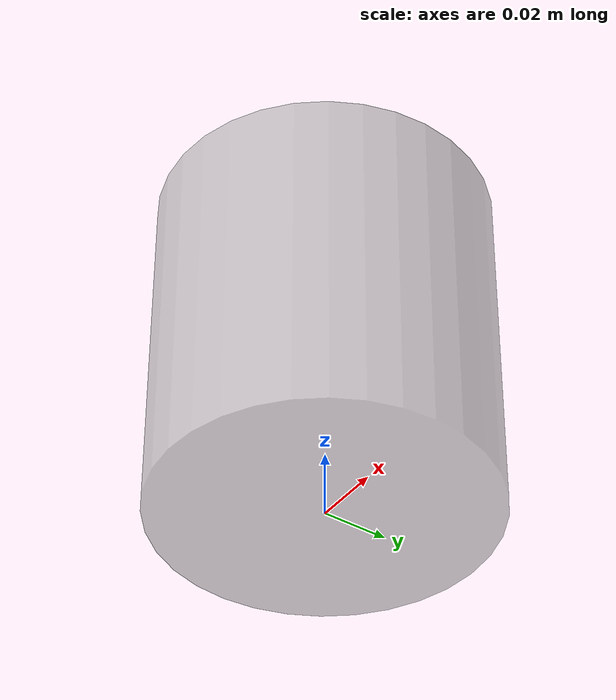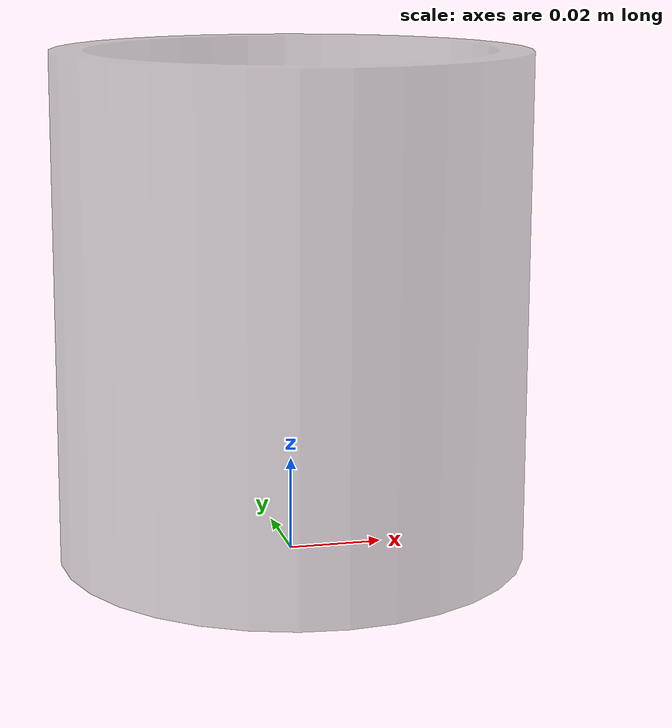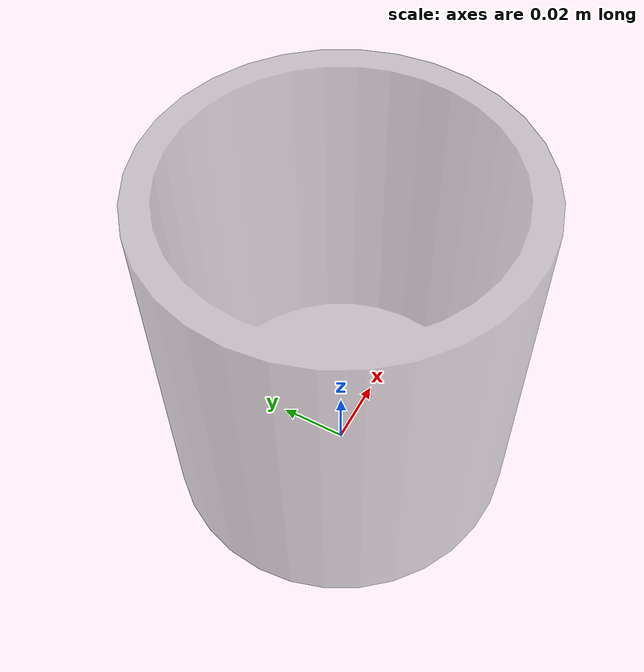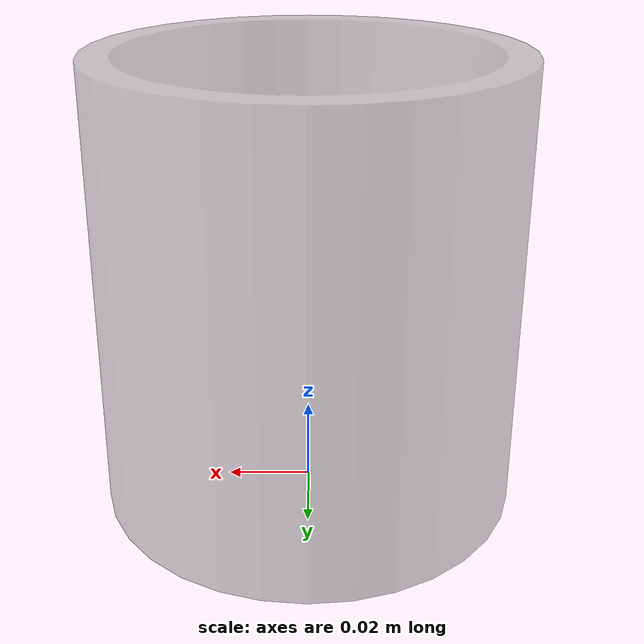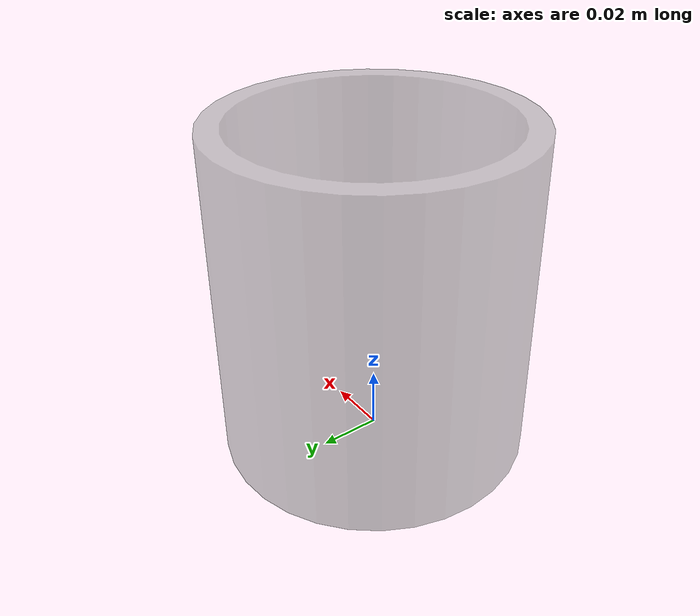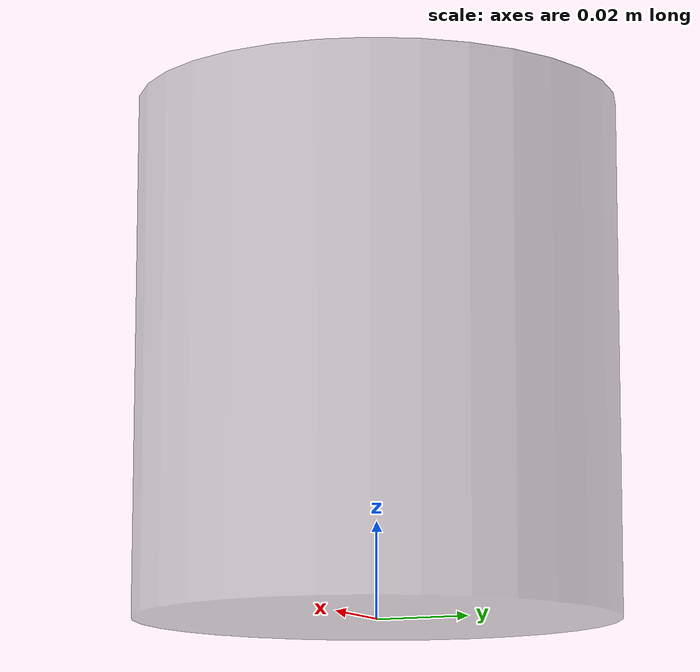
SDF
<sdf version="1.5">
    <model name="Cup">
        <pose>0 0 0 0 0 0</pose>
        <link name="mug_link">
            <pose>0 0 0 0 0 0</pose>
            <inertial>
                <pose>0 0 0.05 0 0 0</pose>
                <inertia>
                    <ixx>0.00050</ixx>
                    <ixy>0.00000</ixy>
                    <ixz>0.00000</ixz>
                    <iyy>0.00050</iyy>
                    <iyz>0.00000</iyz>
                    <izz>0.00080</izz>
                </inertia>
                <mass>0.25</mass>
            </inertial>

            <collision name="mug_collision">
                <pose>0 0 0 0 0 0</pose>
                <geometry>
                    <mesh>
                        <uri>model://mug/meshes/mug_coll.dae</uri>
                        <scale>1 1 1</scale>
                    </mesh>
                </geometry>
                <surface>
                    <friction>
                        <ode>
                            <mu>0.3</mu>
                            <mu2>0.3</mu2>
                            <slip1>10.0</slip1>
                            <slip2>10.0</slip2>
                        </ode>
                    </friction>
                    <bounce>
                        <restitution_coefficient>0.000000</restitution_coefficient>
                        <threshold>100000.000000</threshold>
                    </bounce>
                    <contact>
                        <ode>
                            <soft_cfm>0.0</soft_cfm>
                            <soft_erp>0.0</soft_erp>
                            <kp>10000000000000000000.0</kp>
                            <kd>1000.0</kd>
                            <max_vel>100.000000</max_vel>
                            <min_depth>0.001000</min_depth>
                        </ode>
                        <collide_bitmask>0x03</collide_bitmask>
                    </contact>
                </surface>
            </collision>

            <visual name="mug_visual">
                <pose>0 0 0 0 0 0</pose>
                <geometry>
                    <mesh>
                        <uri>model://mug/meshes/mug_bottom_fixed.dae</uri>
                        <scale>1 1 1</scale>
                    </mesh>
                </geometry>
                <material>
                    <script>
                        <uri>file://media/materials/scripts/gazebo.material</uri>
                        <name>Gazebo/Grey</name>
                    </script>
                </material>
                <cast_shadows>1</cast_shadows>
                <transparency>0.5</transparency>
            </visual>

	    <!-- MUG VIRTUAL CAP, FOR COUNTING SPHERES LEAVING THE MUG -->
            <collision name="mug_event_collision">
                <pose>0.0 0.0 0.11 0.0 0.0 0.0</pose>
                <geometry>
                    <cylinder>
                        <radius>0.05</radius>
                        <length>0.000002</length>
                    </cylinder>
                </geometry>
                <surface>
                    <contact>
		      <collide_without_contact>true</collide_without_contact>
                    </contact>
                </surface>
            </collision>

        </link>
	<allow_auto_disable>false</allow_auto_disable>
    </model>
</sdf>
